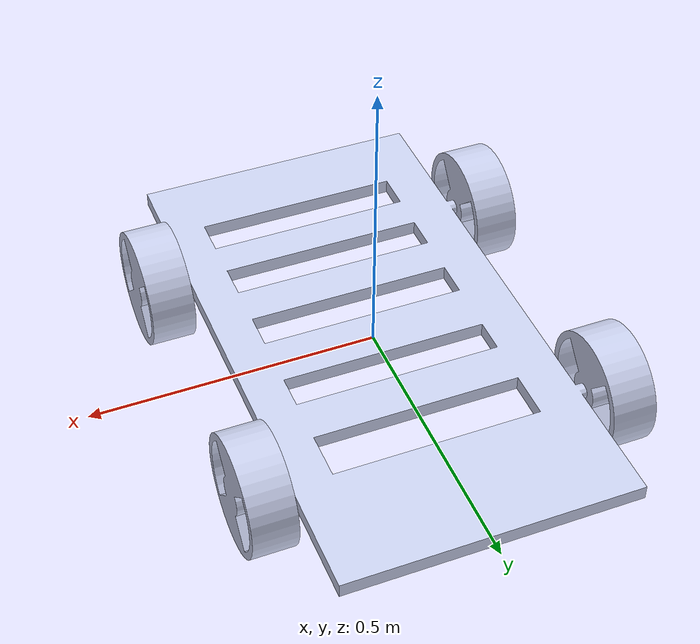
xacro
<?xml version="1.0" encoding="utf-8"?>
<robot
  name="Assem">
  <link
	name = "dummy_link">
  </link>
  <joint
	name = "dummy_link"
	type = "fixed">

	<parent
		link = "dummy_link" />
	<child
		link = "base_link" />
  </joint>
  <gazebo>
    <plugin filename="libgazebo_ros_diff_drive.so" name="differential_drive_controller">
      <legacyMode>false</legacyMode>
      <alwaysOn>true</alwaysOn>
      <updateRate>20</updateRate>
      <leftJoint>left_f</leftJoint>
      <rightJoint>right_f</rightJoint>
      <wheelSeparation>0.5334</wheelSeparation>
      <wheelDiameter>0.1032</wheelDiameter>
      <torque>5.0</torque>
      <commandTopic>cmd_vel</commandTopic>
      <odometryTopic>odom</odometryTopic>
      <odometryFrame>odom</odometryFrame>
      <robotBaseFrame>base_link</robotBaseFrame>
    </plugin>
  </gazebo>

  <link
    name="base_link">
    <inertial>
      <origin
        xyz="-0.0016914 0.0127 -0.01121"
        rpy="0 0 0" />
      <mass
        value="4" />
      <inertia
        ixx="0.83564"
        ixy="2.6064E-18"
        ixz="0.0007444"
        iyy="1.0742"
        iyz="7.9758E-19"
        izz="0.23955" />
    </inertial>
    <visual>
      <origin
        xyz="0 0 0"
        rpy="0 0 0" />
      <geometry>
        <mesh
          filename="package://project1/meshes/base_link.STL" />
      </geometry>
      <material
        name="">
        <color
          rgba="0.79216 0.81961 0.93333 1" />
      </material>
    </visual>
    <collision>
      <origin
        xyz="0 0 0"
        rpy="0 0 0" />
      <geometry>
        <mesh
          filename="package://project1/meshes/base_link.STL" />
      </geometry>
    </collision>
  </link>

  <link
    name="left_f_Link">
    <inertial>
      <origin
        xyz="0.0382293903121097 -1.73472347597681E-18 0"
        rpy="0 0 0" />
      <mass
        value="1.57907589778326" />
      <inertia
        ixx="0.00880766574640623"
        ixy="8.97187520246957E-20"
        ixz="-2.39573040315552E-20"
        iyy="0.00400202473857838"
        iyz="3.16915422768057E-05"
        izz="0.00632680350392821" />
    </inertial>
    <visual>
      <origin
        xyz="0 0 0"
        rpy="0 0 0" />
      <geometry>
        <mesh
          filename="package://project1/meshes/left_f_Link.STL" />
      </geometry>
      <material
        name="">
        <color
          rgba="0.792156862745098 0.819607843137255 0.933333333333333 1" />
      </material>
    </visual>
    <collision>
      <origin
        xyz="0 0 0"
        rpy="0 0 0" />
      <geometry>
        <mesh
          filename="package://project1/meshes/left_f_Link.STL" />
      </geometry>
    </collision>
  </link>
  <joint
    name="left_f"
    type="continuous">
    <origin
      xyz="0.2667 -0.254 0.0127"
      rpy="1.4934 0 0" />
    <parent
      link="base_link" />
    <child
      link="left_f_Link" />
    <axis
      xyz="1 0 0" />
  </joint>
  <link
    name="left_b_Link">
    <inertial>
      <origin
        xyz="0.0382293903121097 -3.46944695195361E-18 0"
        rpy="0 0 0" />
      <mass
        value="1.57907589778326" />
      <inertia
        ixx="0.00880766574640623"
        ixy="1.16769056939019E-19"
        ixz="-2.89368343198518E-19"
        iyy="0.00400202473857838"
        iyz="3.16915422768003E-05"
        izz="0.00632680350392821" />
    </inertial>
    <visual>
      <origin
        xyz="0 0 0"
        rpy="0 0 0" />
      <geometry>
        <mesh
          filename="package://project1/meshes/left_b_Link.STL" />
      </geometry>
      <material
        name="">
        <color
          rgba="0.792156862745098 0.819607843137255 0.933333333333333 1" />
      </material>
    </visual>
    <collision>
      <origin
        xyz="0 0 0"
        rpy="0 0 0" />
      <geometry>
        <mesh
          filename="package://project1/meshes/left_b_Link.STL" />
      </geometry>
    </collision>
  </link>
  <joint
    name="left_b"
    type="continuous">
    <origin
      xyz="0.2667 0.254 0.0127"
      rpy="1.5456 0 0" />
    <parent
      link="base_link" />
    <child
      link="left_b_Link" />
    <axis
      xyz="1 0 0" />
  </joint>
  <link
    name="right_f_Link">
    <inertial>
      <origin
        xyz="0.0382293903121098 1.73472347597681E-18 0"
        rpy="0 0 0" />
      <mass
        value="1.57907589778326" />
      <inertia
        ixx="0.00880766574640622"
        ixy="2.93945738314315E-21"
        ixz="2.09244409814948E-19"
        iyy="0.00400202473857838"
        iyz="3.16915422767972E-05"
        izz="0.00632680350392821" />
    </inertial>
    <visual>
      <origin
        xyz="0 0 0"
        rpy="0 0 0" />
      <geometry>
        <mesh
          filename="package://project1/meshes/right_f_Link.STL" />
      </geometry>
      <material
        name="">
        <color
          rgba="0.792156862745098 0.819607843137255 0.933333333333333 1" />
      </material>
    </visual>
    <collision>
      <origin
        xyz="0 0 0"
        rpy="0 0 0" />
      <geometry>
        <mesh
          filename="package://project1/meshes/right_f_Link.STL" />
      </geometry>
    </collision>
  </link>
  <joint
    name="right_f"
    type="continuous">
    <origin
      xyz="-0.2667 -0.254 0.0127"
      rpy="-1.48 0 -3.1416" />
    <parent
      link="base_link" />
    <child
      link="right_f_Link" />
    <axis
      xyz="1 0 0" />
  </joint>
  <link
    name="right_b_Link">
    <inertial>
      <origin
        xyz="0.0382293903121097 -5.20417042793042E-18 0"
        rpy="0 0 0" />
      <mass
        value="1.57907589778326" />
      <inertia
        ixx="0.00880766574640623"
        ixy="8.48274680339935E-20"
        ixz="-5.67037306013235E-20"
        iyy="0.00400202473857838"
        iyz="3.1691542276803E-05"
        izz="0.00632680350392821" />
    </inertial>
    <visual>
      <origin
        xyz="0 0 0"
        rpy="0 0 0" />
      <geometry>
        <mesh
          filename="package://project1/meshes/right_b_Link.STL" />
      </geometry>
      <material
        name="">
        <color
          rgba="0.792156862745098 0.819607843137255 0.933333333333333 1" />
      </material>
    </visual>
    <collision>
      <origin
        xyz="0 0 0"
        rpy="0 0 0" />
      <geometry>
        <mesh
          filename="package://project1/meshes/right_b_Link.STL" />
      </geometry>
    </collision>
  </link>
  <joint
    name="right_b"
    type="continuous">
    <origin
      xyz="-0.2667 0.254 0.0127"
      rpy="-1.5708 0 3.1416" />
    <parent
      link="base_link" />
    <child
      link="right_b_Link" />
    <axis
      xyz="1 0 0" />
  </joint>
</robot>
